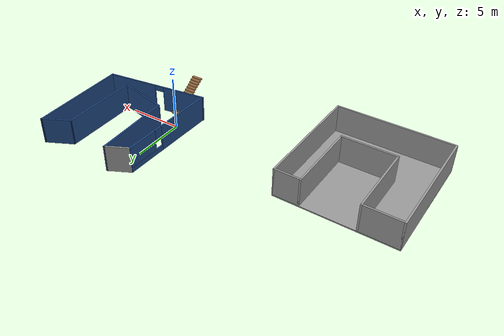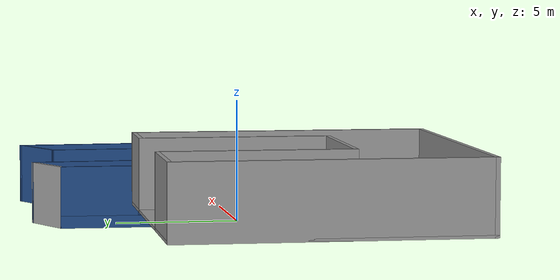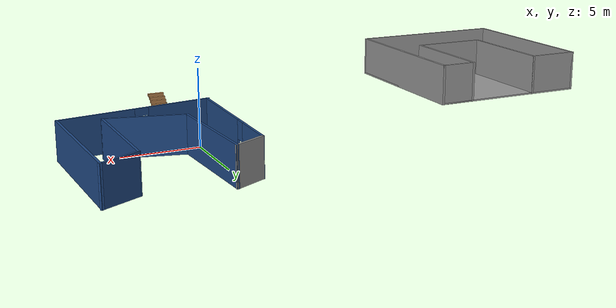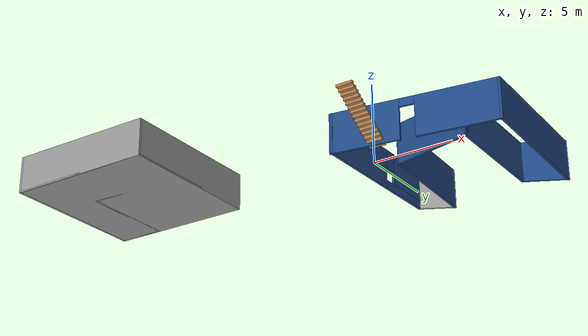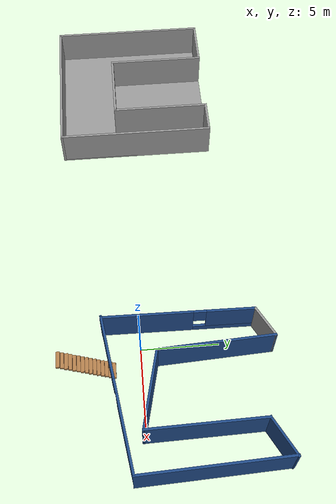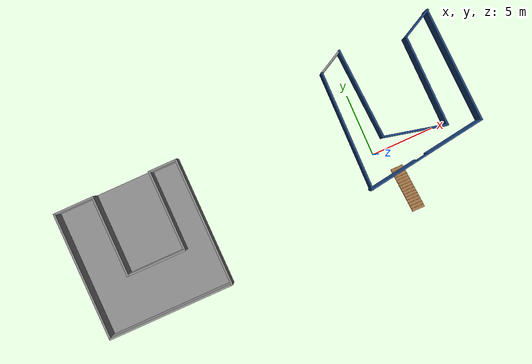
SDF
<?xml version='1.0'?>
<sdf version='1.7'>
  <model name='mybuilding'>
    <pose>3.52002 1.68974 0 0 -0 0</pose>
    <link name='Floor_0'>
      <pose>-22.3068 -0.995259 2.5 0 -0 0</pose>
      <visual name='Floor_0_Visual_0'>
        <pose>0 0 0.05 0 -0 0</pose>
        <geometry>
          <box>
            <size>10 10.25 0.1</size>
          </box>
        </geometry>
        <material>
          <script>
            <uri>file://media/materials/scripts/gazebo.material</uri>
            <name>Gazebo/Grey</name>
          </script>
          <ambient>1 1 1 1</ambient>
        </material>
        <meta>
          <layer>1</layer>
        </meta>
      </visual>
      <collision name='Floor_0_Collision_0'>
        <geometry>
          <box>
            <size>10 10.25 0.1</size>
          </box>
        </geometry>
        <pose>0 0 0.05 0 -0 0</pose>
      </collision>
    </link>
    <link name='Stairs_0'>
      <visual name='Stairs_0_Visual_0'>
        <pose>-2.25856 -3.42616 0.083333 0 -0 0</pose>
        <geometry>
          <box>
            <size>1 0.233333 0.166667</size>
          </box>
        </geometry>
        <material>
          <script>
            <uri>file://media/materials/scripts/gazebo.material</uri>
            <name>Gazebo/Wood</name>
          </script>
          <ambient>1 1 1 1</ambient>
        </material>
        <meta>
          <layer>0</layer>
        </meta>
      </visual>
      <collision name='Stairs_0_Collision_0'>
        <geometry>
          <box>
            <size>1 0.233333 0.166667</size>
          </box>
        </geometry>
        <pose>-2.25856 -3.42616 0.083333 0 -0 0</pose>
      </collision>
      <visual name='Stairs_0_Visual_1'>
        <pose>-2.25856 -3.6595 0.25 0 -0 0</pose>
        <geometry>
          <box>
            <size>1 0.233333 0.166667</size>
          </box>
        </geometry>
        <material>
          <script>
            <uri>file://media/materials/scripts/gazebo.material</uri>
            <name>Gazebo/Wood</name>
          </script>
          <ambient>1 1 1 1</ambient>
        </material>
        <meta>
          <layer>0</layer>
        </meta>
      </visual>
      <collision name='Stairs_0_Collision_1'>
        <geometry>
          <box>
            <size>1 0.233333 0.166667</size>
          </box>
        </geometry>
        <pose>-2.25856 -3.6595 0.25 0 -0 0</pose>
      </collision>
      <visual name='Stairs_0_Visual_2'>
        <pose>-2.25856 -3.89283 0.416667 0 -0 0</pose>
        <geometry>
          <box>
            <size>1 0.233333 0.166667</size>
          </box>
        </geometry>
        <material>
          <script>
            <uri>file://media/materials/scripts/gazebo.material</uri>
            <name>Gazebo/Wood</name>
          </script>
          <ambient>1 1 1 1</ambient>
        </material>
        <meta>
          <layer>0</layer>
        </meta>
      </visual>
      <collision name='Stairs_0_Collision_2'>
        <geometry>
          <box>
            <size>1 0.233333 0.166667</size>
          </box>
        </geometry>
        <pose>-2.25856 -3.89283 0.416667 0 -0 0</pose>
      </collision>
      <visual name='Stairs_0_Visual_3'>
        <pose>-2.25856 -4.12616 0.583333 0 -0 0</pose>
        <geometry>
          <box>
            <size>1 0.233333 0.166667</size>
          </box>
        </geometry>
        <material>
          <script>
            <uri>file://media/materials/scripts/gazebo.material</uri>
            <name>Gazebo/Wood</name>
          </script>
          <ambient>1 1 1 1</ambient>
        </material>
        <meta>
          <layer>0</layer>
        </meta>
      </visual>
      <collision name='Stairs_0_Collision_3'>
        <geometry>
          <box>
            <size>1 0.233333 0.166667</size>
          </box>
        </geometry>
        <pose>-2.25856 -4.12616 0.583333 0 -0 0</pose>
      </collision>
      <visual name='Stairs_0_Visual_4'>
        <pose>-2.25856 -4.3595 0.75 0 -0 0</pose>
        <geometry>
          <box>
            <size>1 0.233333 0.166667</size>
          </box>
        </geometry>
        <material>
          <script>
            <uri>file://media/materials/scripts/gazebo.material</uri>
            <name>Gazebo/Wood</name>
          </script>
          <ambient>1 1 1 1</ambient>
        </material>
        <meta>
          <layer>0</layer>
        </meta>
      </visual>
      <collision name='Stairs_0_Collision_4'>
        <geometry>
          <box>
            <size>1 0.233333 0.166667</size>
          </box>
        </geometry>
        <pose>-2.25856 -4.3595 0.75 0 -0 0</pose>
      </collision>
      <visual name='Stairs_0_Visual_5'>
        <pose>-2.25856 -4.59283 0.916667 0 -0 0</pose>
        <geometry>
          <box>
            <size>1 0.233333 0.166667</size>
          </box>
        </geometry>
        <material>
          <script>
            <uri>file://media/materials/scripts/gazebo.material</uri>
            <name>Gazebo/Wood</name>
          </script>
          <ambient>1 1 1 1</ambient>
        </material>
        <meta>
          <layer>0</layer>
        </meta>
      </visual>
      <collision name='Stairs_0_Collision_5'>
        <geometry>
          <box>
            <size>1 0.233333 0.166667</size>
          </box>
        </geometry>
        <pose>-2.25856 -4.59283 0.916667 0 -0 0</pose>
      </collision>
      <visual name='Stairs_0_Visual_6'>
        <pose>-2.25856 -4.82616 1.08333 0 -0 0</pose>
        <geometry>
          <box>
            <size>1 0.233333 0.166667</size>
          </box>
        </geometry>
        <material>
          <script>
            <uri>file://media/materials/scripts/gazebo.material</uri>
            <name>Gazebo/Wood</name>
          </script>
          <ambient>1 1 1 1</ambient>
        </material>
        <meta>
          <layer>0</layer>
        </meta>
      </visual>
      <collision name='Stairs_0_Collision_6'>
        <geometry>
          <box>
            <size>1 0.233333 0.166667</size>
          </box>
        </geometry>
        <pose>-2.25856 -4.82616 1.08333 0 -0 0</pose>
      </collision>
      <visual name='Stairs_0_Visual_7'>
        <pose>-2.25856 -5.0595 1.25 0 -0 0</pose>
        <geometry>
          <box>
            <size>1 0.233333 0.166667</size>
          </box>
        </geometry>
        <material>
          <script>
            <uri>file://media/materials/scripts/gazebo.material</uri>
            <name>Gazebo/Wood</name>
          </script>
          <ambient>1 1 1 1</ambient>
        </material>
        <meta>
          <layer>0</layer>
        </meta>
      </visual>
      <collision name='Stairs_0_Collision_7'>
        <geometry>
          <box>
            <size>1 0.233333 0.166667</size>
          </box>
        </geometry>
        <pose>-2.25856 -5.0595 1.25 0 -0 0</pose>
      </collision>
      <visual name='Stairs_0_Visual_8'>
        <pose>-2.25856 -5.29283 1.41667 0 -0 0</pose>
        <geometry>
          <box>
            <size>1 0.233333 0.166667</size>
          </box>
        </geometry>
        <material>
          <script>
            <uri>file://media/materials/scripts/gazebo.material</uri>
            <name>Gazebo/Wood</name>
          </script>
          <ambient>1 1 1 1</ambient>
        </material>
        <meta>
          <layer>0</layer>
        </meta>
      </visual>
      <collision name='Stairs_0_Collision_8'>
        <geometry>
          <box>
            <size>1 0.233333 0.166667</size>
          </box>
        </geometry>
        <pose>-2.25856 -5.29283 1.41667 0 -0 0</pose>
      </collision>
      <visual name='Stairs_0_Visual_9'>
        <pose>-2.25856 -5.52616 1.58333 0 -0 0</pose>
        <geometry>
          <box>
            <size>1 0.233333 0.166667</size>
          </box>
        </geometry>
        <material>
          <script>
            <uri>file://media/materials/scripts/gazebo.material</uri>
            <name>Gazebo/Wood</name>
          </script>
          <ambient>1 1 1 1</ambient>
        </material>
        <meta>
          <layer>0</layer>
        </meta>
      </visual>
      <collision name='Stairs_0_Collision_9'>
        <geometry>
          <box>
            <size>1 0.233333 0.166667</size>
          </box>
        </geometry>
        <pose>-2.25856 -5.52616 1.58333 0 -0 0</pose>
      </collision>
      <visual name='Stairs_0_Visual_10'>
        <pose>-2.25856 -5.7595 1.75 0 -0 0</pose>
        <geometry>
          <box>
            <size>1 0.233333 0.166667</size>
          </box>
        </geometry>
        <material>
          <script>
            <uri>file://media/materials/scripts/gazebo.material</uri>
            <name>Gazebo/Wood</name>
          </script>
          <ambient>1 1 1 1</ambient>
        </material>
        <meta>
          <layer>0</layer>
        </meta>
      </visual>
      <collision name='Stairs_0_Collision_10'>
        <geometry>
          <box>
            <size>1 0.233333 0.166667</size>
          </box>
        </geometry>
        <pose>-2.25856 -5.7595 1.75 0 -0 0</pose>
      </collision>
      <visual name='Stairs_0_Visual_11'>
        <pose>-2.25856 -5.99283 1.91667 0 -0 0</pose>
        <geometry>
          <box>
            <size>1 0.233333 0.166667</size>
          </box>
        </geometry>
        <material>
          <script>
            <uri>file://media/materials/scripts/gazebo.material</uri>
            <name>Gazebo/Wood</name>
          </script>
          <ambient>1 1 1 1</ambient>
        </material>
        <meta>
          <layer>0</layer>
        </meta>
      </visual>
      <collision name='Stairs_0_Collision_11'>
        <geometry>
          <box>
            <size>1 0.233333 0.166667</size>
          </box>
        </geometry>
        <pose>-2.25856 -5.99283 1.91667 0 -0 0</pose>
      </collision>
      <visual name='Stairs_0_Visual_12'>
        <pose>-2.25856 -6.22616 2.08333 0 -0 0</pose>
        <geometry>
          <box>
            <size>1 0.233333 0.166667</size>
          </box>
        </geometry>
        <material>
          <script>
            <uri>file://media/materials/scripts/gazebo.material</uri>
            <name>Gazebo/Wood</name>
          </script>
          <ambient>1 1 1 1</ambient>
        </material>
        <meta>
          <layer>0</layer>
        </meta>
      </visual>
      <collision name='Stairs_0_Collision_12'>
        <geometry>
          <box>
            <size>1 0.233333 0.166667</size>
          </box>
        </geometry>
        <pose>-2.25856 -6.22616 2.08333 0 -0 0</pose>
      </collision>
      <visual name='Stairs_0_Visual_13'>
        <pose>-2.25856 -6.4595 2.25 0 -0 0</pose>
        <geometry>
          <box>
            <size>1 0.233333 0.166667</size>
          </box>
        </geometry>
        <material>
          <script>
            <uri>file://media/materials/scripts/gazebo.material</uri>
            <name>Gazebo/Wood</name>
          </script>
          <ambient>1 1 1 1</ambient>
        </material>
        <meta>
          <layer>0</layer>
        </meta>
      </visual>
      <collision name='Stairs_0_Collision_13'>
        <geometry>
          <box>
            <size>1 0.233333 0.166667</size>
          </box>
        </geometry>
        <pose>-2.25856 -6.4595 2.25 0 -0 0</pose>
      </collision>
      <visual name='Stairs_0_Visual_14'>
        <pose>-2.25856 -6.69283 2.41667 0 -0 0</pose>
        <geometry>
          <box>
            <size>1 0.233333 0.166667</size>
          </box>
        </geometry>
        <material>
          <script>
            <uri>file://media/materials/scripts/gazebo.material</uri>
            <name>Gazebo/Wood</name>
          </script>
          <ambient>1 1 1 1</ambient>
        </material>
        <meta>
          <layer>0</layer>
        </meta>
      </visual>
      <collision name='Stairs_0_Collision_14'>
        <geometry>
          <box>
            <size>1 0.233333 0.166667</size>
          </box>
        </geometry>
        <pose>-2.25856 -6.69283 2.41667 0 -0 0</pose>
      </collision>
    </link>
    <link name='Wall_10'>
      <collision name='Wall_10_Collision'>
        <geometry>
          <box>
            <size>10.25 0.15 2.5</size>
          </box>
        </geometry>
        <pose>0 0 1.25 0 -0 0</pose>
      </collision>
      <visual name='Wall_10_Visual'>
        <pose>0 0 1.25 0 -0 0</pose>
        <geometry>
          <box>
            <size>10.25 0.15 2.5</size>
          </box>
        </geometry>
        <material>
          <script>
            <uri>file://media/materials/scripts/gazebo.material</uri>
            <name>Gazebo/Grey</name>
          </script>
          <ambient>1 1 1 1</ambient>
        </material>
        <meta>
          <layer>1</layer>
        </meta>
      </visual>
      <pose>-17.3818 -0.995259 2.5 0 -0 -1.5708</pose>
    </link>
    <link name='Wall_11'>
      <collision name='Wall_11_Collision'>
        <geometry>
          <box>
            <size>10 0.15 2.5</size>
          </box>
        </geometry>
        <pose>0 0 1.25 0 -0 0</pose>
      </collision>
      <visual name='Wall_11_Visual'>
        <pose>0 0 1.25 0 -0 0</pose>
        <geometry>
          <box>
            <size>10 0.15 2.5</size>
          </box>
        </geometry>
        <material>
          <script>
            <uri>file://media/materials/scripts/gazebo.material</uri>
            <name>Gazebo/Grey</name>
          </script>
          <ambient>1 1 1 1</ambient>
        </material>
        <meta>
          <layer>1</layer>
        </meta>
      </visual>
      <pose>-22.3068 -6.04526 2.5 0 -0 3.14159</pose>
    </link>
    <link name='Wall_12'>
      <collision name='Wall_12_Collision'>
        <geometry>
          <box>
            <size>10.25 0.15 2.5</size>
          </box>
        </geometry>
        <pose>0 0 1.25 0 -0 0</pose>
      </collision>
      <visual name='Wall_12_Visual'>
        <pose>0 0 1.25 0 -0 0</pose>
        <geometry>
          <box>
            <size>10.25 0.15 2.5</size>
          </box>
        </geometry>
        <material>
          <script>
            <uri>file://media/materials/scripts/gazebo.material</uri>
            <name>Gazebo/Grey</name>
          </script>
          <ambient>1 1 1 1</ambient>
        </material>
        <meta>
          <layer>1</layer>
        </meta>
      </visual>
      <pose>-27.2318 -0.995259 2.5 0 -0 1.5708</pose>
    </link>
    <link name='Wall_13'>
      <collision name='Wall_13_Collision'>
        <geometry>
          <box>
            <size>3.25 0.15 2.5</size>
          </box>
        </geometry>
        <pose>0 0 1.25 0 -0 0</pose>
      </collision>
      <visual name='Wall_13_Visual'>
        <pose>0 0 1.25 0 -0 0</pose>
        <geometry>
          <box>
            <size>3.25 0.15 2.5</size>
          </box>
        </geometry>
        <material>
          <script>
            <uri>file://media/materials/scripts/gazebo.material</uri>
            <name>Gazebo/Grey</name>
          </script>
          <ambient>1 1 1 1</ambient>
        </material>
        <meta>
          <layer>1</layer>
        </meta>
      </visual>
      <pose>-25.6818 4.05474 2.5 0 -0 0</pose>
    </link>
    <link name='Wall_14'>
      <collision name='Wall_14_Collision'>
        <geometry>
          <box>
            <size>6.5 0.15 2.5</size>
          </box>
        </geometry>
        <pose>0 0 1.25 0 -0 0</pose>
      </collision>
      <visual name='Wall_14_Visual'>
        <pose>0 0 1.25 0 -0 0</pose>
        <geometry>
          <box>
            <size>6.5 0.15 2.5</size>
          </box>
        </geometry>
        <material>
          <script>
            <uri>file://media/materials/scripts/gazebo.material</uri>
            <name>Gazebo/Grey</name>
          </script>
          <ambient>1 1 1 1</ambient>
        </material>
        <meta>
          <layer>1</layer>
        </meta>
      </visual>
      <pose>-24.1318 0.879741 2.5 0 -0 -1.5708</pose>
    </link>
    <link name='Wall_15'>
      <collision name='Wall_15_Collision'>
        <geometry>
          <box>
            <size>4.75 0.15 2.5</size>
          </box>
        </geometry>
        <pose>0 0 1.25 0 -0 0</pose>
      </collision>
      <visual name='Wall_15_Visual'>
        <pose>0 0 1.25 0 -0 0</pose>
        <geometry>
          <box>
            <size>4.75 0.15 2.5</size>
          </box>
        </geometry>
        <material>
          <script>
            <uri>file://media/materials/scripts/gazebo.material</uri>
            <name>Gazebo/Grey</name>
          </script>
          <ambient>1 1 1 1</ambient>
        </material>
        <meta>
          <layer>1</layer>
        </meta>
      </visual>
      <pose>-21.8318 -2.29526 2.5 0 -0 0</pose>
    </link>
    <link name='Wall_16'>
      <collision name='Wall_16_Collision'>
        <geometry>
          <box>
            <size>6.5 0.15 2.5</size>
          </box>
        </geometry>
        <pose>0 0 1.25 0 -0 0</pose>
      </collision>
      <visual name='Wall_16_Visual'>
        <pose>0 0 1.25 0 -0 0</pose>
        <geometry>
          <box>
            <size>6.5 0.15 2.5</size>
          </box>
        </geometry>
        <material>
          <script>
            <uri>file://media/materials/scripts/gazebo.material</uri>
            <name>Gazebo/Grey</name>
          </script>
          <ambient>1 1 1 1</ambient>
        </material>
        <meta>
          <layer>1</layer>
        </meta>
      </visual>
      <pose>-19.5318 0.879741 2.5 0 -0 1.5708</pose>
    </link>
    <link name='Wall_17'>
      <collision name='Wall_17_Collision'>
        <geometry>
          <box>
            <size>2.3 0.15 2.5</size>
          </box>
        </geometry>
        <pose>0 0 1.25 0 -0 0</pose>
      </collision>
      <visual name='Wall_17_Visual'>
        <pose>0 0 1.25 0 -0 0</pose>
        <geometry>
          <box>
            <size>2.3 0.15 2.5</size>
          </box>
        </geometry>
        <material>
          <script>
            <uri>file://media/materials/scripts/gazebo.material</uri>
            <name>Gazebo/Grey</name>
          </script>
          <ambient>1 1 1 1</ambient>
        </material>
        <meta>
          <layer>1</layer>
        </meta>
      </visual>
      <pose>-18.4568 4.05474 2.5 0 -0 0</pose>
    </link>
    <link name='Wall_18'>
      <collision name='Wall_18_Collision'>
        <geometry>
          <box>
            <size>9.43943 0.15 2.5</size>
          </box>
        </geometry>
        <pose>0 0 1.25 0 -0 0</pose>
      </collision>
      <visual name='Wall_18_Visual'>
        <pose>0 0 1.25 0 -0 0</pose>
        <geometry>
          <box>
            <size>9.43943 0.15 2.5</size>
          </box>
        </geometry>
        <material>
          <script>
            <uri>file://media/materials/scripts/gazebo.material</uri>
            <name>Gazebo/Grey</name>
          </script>
          <ambient>0.12549 0.290196 0.529412 1</ambient>
        </material>
        <meta>
          <layer>0</layer>
        </meta>
      </visual>
      <pose>4.72338 2.0673 0 0 -0 -1.53056</pose>
    </link>
    <link name='Wall_19'>
      <pose>-0.031547 -3.29843 0 0 -0 -2.99389</pose>
      <visual name='Wall_19_Visual_0'>
        <pose>-2.56374 0 1.25 0 -0 0</pose>
        <geometry>
          <box>
            <size>4.87251 0.15 2.5</size>
          </box>
        </geometry>
        <material>
          <script>
            <uri>file://media/materials/scripts/gazebo.material</uri>
            <name>Gazebo/Grey</name>
          </script>
          <ambient>0.12549 0.290196 0.529412 1</ambient>
        </material>
        <meta>
          <layer>0</layer>
        </meta>
      </visual>
      <collision name='Wall_19_Collision_0'>
        <geometry>
          <box>
            <size>4.87251 0.15 2.5</size>
          </box>
        </geometry>
        <pose>-2.56374 0 1.25 0 -0 0</pose>
      </collision>
      <visual name='Wall_19_Visual_1'>
        <pose>2.88625 0 1.25 0 -0 0</pose>
        <geometry>
          <box>
            <size>4.22749 0.15 2.5</size>
          </box>
        </geometry>
        <material>
          <script>
            <uri>file://media/materials/scripts/gazebo.material</uri>
            <name>Gazebo/Grey</name>
          </script>
          <ambient>0.12549 0.290196 0.529412 1</ambient>
        </material>
        <meta>
          <layer>0</layer>
        </meta>
      </visual>
      <collision name='Wall_19_Collision_1'>
        <geometry>
          <box>
            <size>4.22749 0.15 2.5</size>
          </box>
        </geometry>
        <pose>2.88625 0 1.25 0 -0 0</pose>
      </collision>
      <visual name='Wall_19_Visual_2'>
        <pose>0.32251 0 2.25 0 -0 0</pose>
        <geometry>
          <box>
            <size>0.9 0.15 0.5</size>
          </box>
        </geometry>
        <material>
          <script>
            <uri>file://media/materials/scripts/gazebo.material</uri>
            <name>Gazebo/Grey</name>
          </script>
          <ambient>0.12549 0.290196 0.529412 1</ambient>
        </material>
        <meta>
          <layer>0</layer>
        </meta>
      </visual>
      <collision name='Wall_19_Collision_2'>
        <geometry>
          <box>
            <size>0.9 0.15 0.5</size>
          </box>
        </geometry>
        <pose>0.32251 0 2.25 0 -0 0</pose>
      </collision>
    </link>
    <link name='Wall_20'>
      <pose>-4.77174 0.792776 0 0 -0 1.55817</pose>
      <visual name='Wall_20_Visual_0'>
        <pose>-1.96303 0 1.25 0 -0 0</pose>
        <geometry>
          <box>
            <size>5.85668 0.15 2.5</size>
          </box>
        </geometry>
        <material>
          <script>
            <uri>file://media/materials/scripts/gazebo.material</uri>
            <name>Gazebo/Grey</name>
          </script>
          <ambient>0.12549 0.290196 0.529412 1</ambient>
        </material>
        <meta>
          <layer>0</layer>
        </meta>
      </visual>
      <collision name='Wall_20_Collision_0'>
        <geometry>
          <box>
            <size>5.85668 0.15 2.5</size>
          </box>
        </geometry>
        <pose>-1.96303 0 1.25 0 -0 0</pose>
      </collision>
      <visual name='Wall_20_Visual_1'>
        <pose>2.92834 0 0.25 0 -0 0</pose>
        <geometry>
          <box>
            <size>3.92605 0.15 0.5</size>
          </box>
        </geometry>
        <material>
          <script>
            <uri>file://media/materials/scripts/gazebo.material</uri>
            <name>Gazebo/Grey</name>
          </script>
          <ambient>0.12549 0.290196 0.529412 1</ambient>
        </material>
        <meta>
          <layer>0</layer>
        </meta>
      </visual>
      <collision name='Wall_20_Collision_1'>
        <geometry>
          <box>
            <size>3.92605 0.15 0.5</size>
          </box>
        </geometry>
        <pose>2.92834 0 0.25 0 -0 0</pose>
      </collision>
      <visual name='Wall_20_Visual_2'>
        <pose>3.32834 0 1.5 0 -0 0</pose>
        <geometry>
          <box>
            <size>3.12605 0.15 2</size>
          </box>
        </geometry>
        <material>
          <script>
            <uri>file://media/materials/scripts/gazebo.material</uri>
            <name>Gazebo/Grey</name>
          </script>
          <ambient>0.12549 0.290196 0.529412 1</ambient>
        </material>
        <meta>
          <layer>0</layer>
        </meta>
      </visual>
      <collision name='Wall_20_Collision_2'>
        <geometry>
          <box>
            <size>3.12605 0.15 2</size>
          </box>
        </geometry>
        <pose>3.32834 0 1.5 0 -0 0</pose>
      </collision>
      <visual name='Wall_20_Visual_3'>
        <pose>1.36532 0 1.9 0 -0 0</pose>
        <geometry>
          <box>
            <size>0.8 0.15 1.2</size>
          </box>
        </geometry>
        <material>
          <script>
            <uri>file://media/materials/scripts/gazebo.material</uri>
            <name>Gazebo/Grey</name>
          </script>
          <ambient>0.12549 0.290196 0.529412 1</ambient>
        </material>
        <meta>
          <layer>0</layer>
        </meta>
      </visual>
      <collision name='Wall_20_Collision_3'>
        <geometry>
          <box>
            <size>0.8 0.15 1.2</size>
          </box>
        </geometry>
        <pose>1.36532 0 1.9 0 -0 0</pose>
      </collision>
    </link>
    <link name='Wall_21'>
      <collision name='Wall_21_Collision'>
        <geometry>
          <box>
            <size>2.23886 0.15 2.5</size>
          </box>
        </geometry>
        <pose>0 0 1.25 0 -0 0</pose>
      </collision>
      <visual name='Wall_21_Visual'>
        <pose>0 0 1.25 0 -0 0</pose>
        <geometry>
          <box>
            <size>2.23886 0.15 2.5</size>
          </box>
        </geometry>
        <material>
          <script>
            <uri>file://media/materials/scripts/gazebo.material</uri>
            <name>Gazebo/Grey</name>
          </script>
          <ambient>1 1 1 1</ambient>
        </material>
        <meta>
          <layer>0</layer>
        </meta>
      </visual>
      <pose>-3.75245 6.1322 0 0 -0 0.486449</pose>
    </link>
    <link name='Wall_22'>
      <collision name='Wall_22_Collision'>
        <geometry>
          <box>
            <size>7.5 0.15 2.5</size>
          </box>
        </geometry>
        <pose>0 0 1.25 0 -0 0</pose>
      </collision>
      <visual name='Wall_22_Visual'>
        <pose>0 0 1.25 0 -0 0</pose>
        <geometry>
          <box>
            <size>7.5 0.15 2.5</size>
          </box>
        </geometry>
        <material>
          <script>
            <uri>file://media/materials/scripts/gazebo.material</uri>
            <name>Gazebo/Grey</name>
          </script>
          <ambient>0.12549 0.290196 0.529412 1</ambient>
        </material>
        <meta>
          <layer>0</layer>
        </meta>
      </visual>
      <pose>-2.63381 2.95066 0 0 -0 -1.51761</pose>
    </link>
    <link name='Wall_23'>
      <collision name='Wall_23_Collision'>
        <geometry>
          <box>
            <size>5.11634 0.15 2.5</size>
          </box>
        </geometry>
        <pose>0 0 1.25 0 -0 0</pose>
      </collision>
      <visual name='Wall_23_Visual'>
        <pose>0 0 1.25 0 -0 0</pose>
        <geometry>
          <box>
            <size>5.11634 0.15 2.5</size>
          </box>
        </geometry>
        <material>
          <script>
            <uri>file://media/materials/scripts/gazebo.material</uri>
            <name>Gazebo/Grey</name>
          </script>
          <ambient>0.12549 0.290196 0.529412 1</ambient>
        </material>
        <meta>
          <layer>0</layer>
        </meta>
      </visual>
      <pose>-0.021684 -1.28958 0 0 -0 -0.23179</pose>
    </link>
    <link name='Wall_24'>
      <collision name='Wall_24_Collision'>
        <geometry>
          <box>
            <size>7.5 0.15 2.5</size>
          </box>
        </geometry>
        <pose>0 0 1.25 0 -0 0</pose>
      </collision>
      <visual name='Wall_24_Visual'>
        <pose>0 0 1.25 0 -0 0</pose>
        <geometry>
          <box>
            <size>7.5 0.15 2.5</size>
          </box>
        </geometry>
        <material>
          <script>
            <uri>file://media/materials/scripts/gazebo.material</uri>
            <name>Gazebo/Grey</name>
          </script>
          <ambient>0.12549 0.290196 0.529412 1</ambient>
        </material>
        <meta>
          <layer>0</layer>
        </meta>
      </visual>
      <pose>2.31894 1.8142 0 0 -0 1.59152</pose>
    </link>
    <link name='Wall_25'>
      <collision name='Wall_25_Collision'>
        <geometry>
          <box>
            <size>2.77908 0.15 2.5</size>
          </box>
        </geometry>
        <pose>0 0 1.25 0 -0 0</pose>
      </collision>
      <visual name='Wall_25_Visual'>
        <pose>0 0 1.25 0 -0 0</pose>
        <geometry>
          <box>
            <size>2.77908 0.15 2.5</size>
          </box>
        </geometry>
        <material>
          <script>
            <uri>file://media/materials/scripts/gazebo.material</uri>
            <name>Gazebo/Grey</name>
          </script>
          <ambient>0.12549 0.290196 0.529412 1</ambient>
        </material>
        <meta>
          <layer>0</layer>
        </meta>
      </visual>
      <pose>3.40727 6.09833 0 0 -0 0.482488</pose>
    </link>
    <static>1</static>
  </model>
</sdf>
